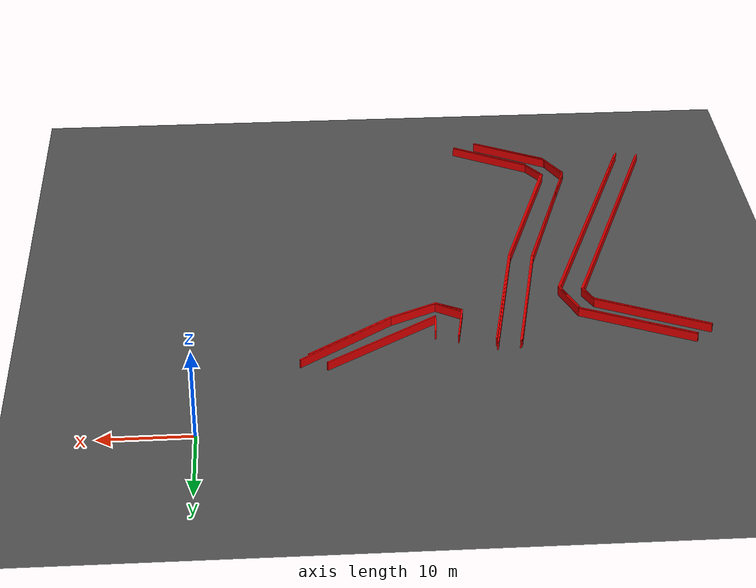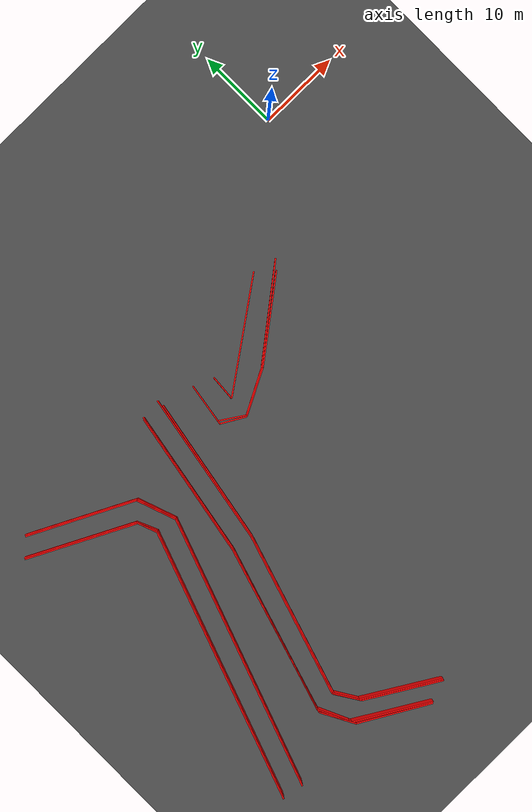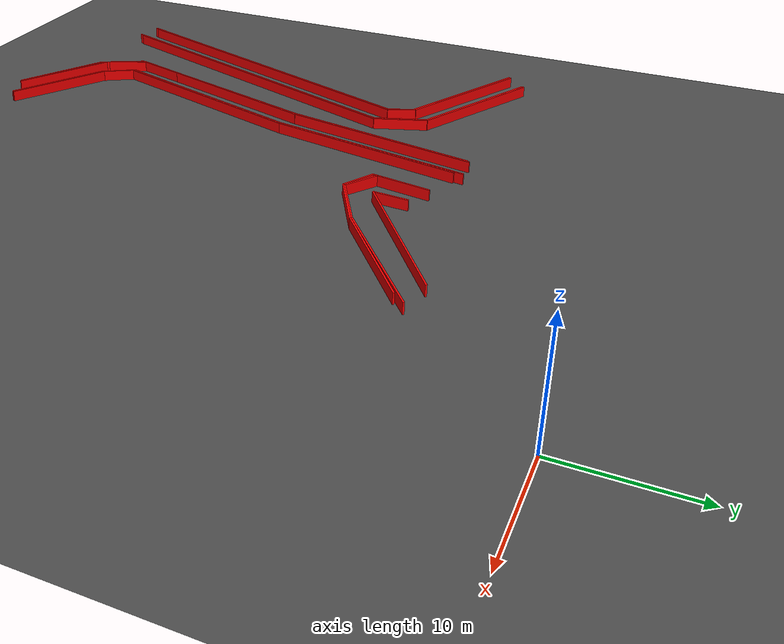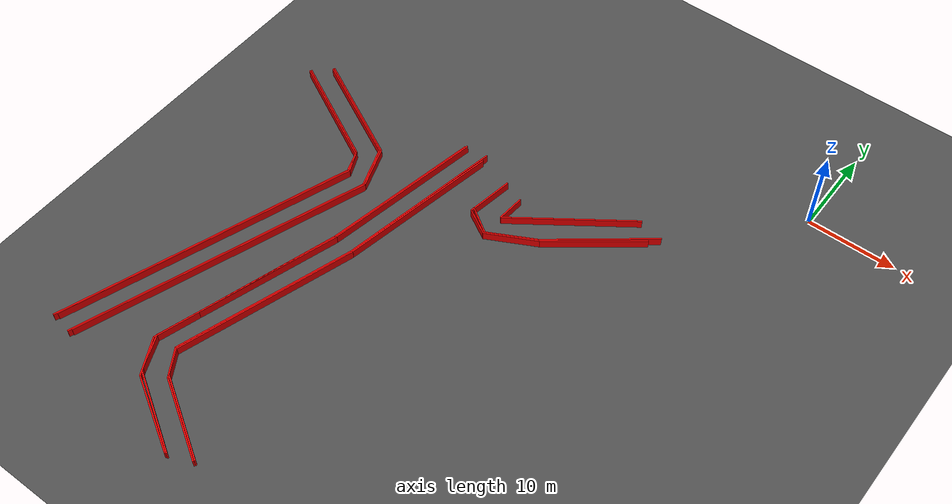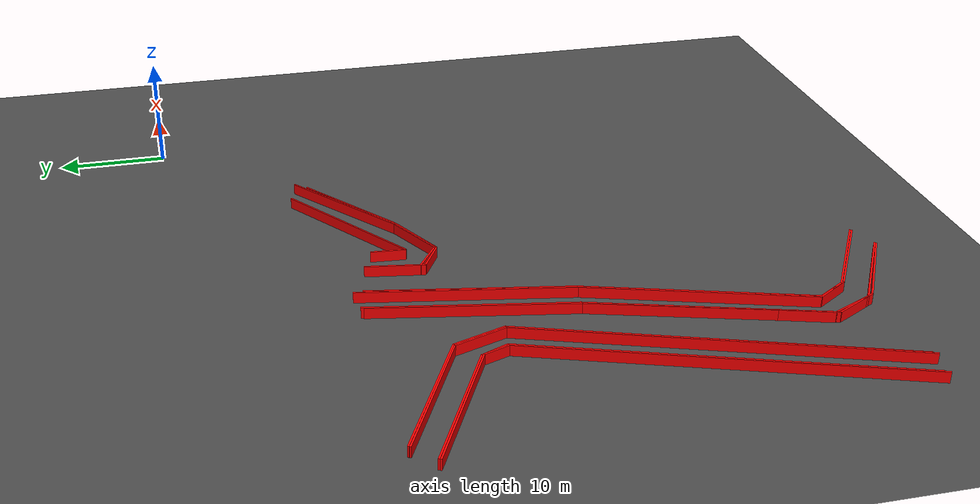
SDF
<sdf version="1.6">
 <world name="track_world">
  <model name="ground_plane">
   <static>true</static>
   <link name="link">
    <collision name="collision">
     <geometry><plane><normal>0 0 1</normal><size>1000 1000</size></plane></geometry>
    </collision>
    <visual name="visual">
     <geometry><plane><normal>0 0 1</normal><size>1000 1000</size></plane></geometry>
     <material><ambient>0.3 0.3 0.3 1</ambient><diffuse>0.3 0.3 0.3 1</diffuse></material>
    </visual>
   </link>
  </model>
  <model name="wall_8">
   <static>true</static>
   <pose>-49.50507416920916 -19.503081822004013 0.5 0 0 -0.4710732150903404</pose>
   <link name="link">
    <visual name="visual">
     <geometry><box><size>13.626830833983373 0.15 1.0</size></box></geometry>
     <material><ambient>1 0 0 1</ambient><diffuse>1 0 0 1</diffuse></material>
    </visual>
    <collision name="collision">
     <geometry><box><size>13.626830833983373 0.15 1.0</size></box></geometry>
    </collision>
   </link>
  </model>
  <model name="wall_9">
   <static>true</static>
   <pose>-43.01895416920916 -23.726601822004014 0.5 0 0 -1.2193515327913416</pose>
   <link name="link">
    <visual name="visual">
     <geometry><box><size>2.409902094359846 0.15 1.0</size></box></geometry>
     <material><ambient>1 0 0 1</ambient><diffuse>1 0 0 1</diffuse></material>
    </visual>
    <collision name="collision">
     <geometry><box><size>2.409902094359846 0.15 1.0</size></box></geometry>
    </collision>
   </link>
  </model>
  <model name="wall_10">
   <static>true</static>
   <pose>-48.18522416920916 -40.84694182200401 0.5 0 0 -1.906630457014399</pose>
   <link name="link">
    <visual name="visual">
     <geometry><box><size>33.87021429445052 0.15 1.0</size></box></geometry>
     <material><ambient>1 0 0 1</ambient><diffuse>1 0 0 1</diffuse></material>
    </visual>
    <collision name="collision">
     <geometry><box><size>33.87021429445052 0.15 1.0</size></box></geometry>
    </collision>
   </link>
  </model>
  <model name="wall_22">
   <static>true</static>
   <pose>-35.32611416920916 -57.363921822004016 0.5 0 0 2.5998727639351658</pose>
   <link name="link">
    <visual name="visual">
     <geometry><box><size>9.946579921018074 0.15 1.0</size></box></geometry>
     <material><ambient>1 0 0 1</ambient><diffuse>1 0 0 1</diffuse></material>
    </visual>
    <collision name="collision">
     <geometry><box><size>9.946579921018074 0.15 1.0</size></box></geometry>
    </collision>
   </link>
  </model>
  <model name="wall_23">
   <static>true</static>
   <pose>-40.37925416920916 -53.517501822004014 0.5 0 0 2.1240906521171885</pose>
   <link name="link">
    <visual name="visual">
     <geometry><box><size>3.0139704230134656 0.15 1.0</size></box></geometry>
     <material><ambient>1 0 0 1</ambient><diffuse>1 0 0 1</diffuse></material>
    </visual>
    <collision name="collision">
     <geometry><box><size>3.0139704230134656 0.15 1.0</size></box></geometry>
    </collision>
   </link>
  </model>
  <model name="wall_24">
   <static>true</static>
   <pose>-38.15436416920916 -42.50618182200401 0.5 0 0 1.2701199353947692</pose>
   <link name="link">
    <visual name="visual">
     <geometry><box><size>20.372336705680087 0.15 1.0</size></box></geometry>
     <material><ambient>1 0 0 1</ambient><diffuse>1 0 0 1</diffuse></material>
    </visual>
    <collision name="collision">
     <geometry><box><size>20.372336705680087 0.15 1.0</size></box></geometry>
    </collision>
   </link>
  </model>
  <model name="wall_25">
   <static>true</static>
   <pose>-33.516034169209156 -23.87744182200401 0.5 0 0 1.3905699709421426</pose>
   <link name="link">
    <visual name="visual">
     <geometry><box><size>18.09215606106691 0.15 1.0</size></box></geometry>
     <material><ambient>1 0 0 1</ambient><diffuse>1 0 0 1</diffuse></material>
    </visual>
    <collision name="collision">
     <geometry><box><size>18.09215606106691 0.15 1.0</size></box></geometry>
    </collision>
   </link>
  </model>
  <model name="wall_33">
   <static>true</static>
   <pose>-28.312054169209162 -18.44720182200401 0.5 0 0 -1.7266645281932202</pose>
   <link name="link">
    <visual name="visual">
     <geometry><box><size>5.344186907696995 0.15 1.0</size></box></geometry>
     <material><ambient>1 0 0 1</ambient><diffuse>1 0 0 1</diffuse></material>
    </visual>
    <collision name="collision">
     <geometry><box><size>5.344186907696995 0.15 1.0</size></box></geometry>
    </collision>
   </link>
  </model>
  <model name="wall_34">
   <static>true</static>
   <pose>-27.33159416920916 -21.87881182200401 0.5 0 0 -0.5162306706117475</pose>
   <link name="link">
    <visual name="visual">
     <geometry><box><size>3.208675627731798 0.15 1.0</size></box></geometry>
     <material><ambient>1 0 0 1</ambient><diffuse>1 0 0 1</diffuse></material>
    </visual>
    <collision name="collision">
     <geometry><box><size>3.208675627731798 0.15 1.0</size></box></geometry>
    </collision>
   </link>
  </model>
  <model name="wall_35">
   <static>true</static>
   <pose>-23.29662416920916 -21.313161822004012 0.5 0 0 0.47501075626509703</pose>
   <link name="link">
    <visual name="visual">
     <geometry><box><size>5.936660759585303 0.15 1.0</size></box></geometry>
     <material><ambient>1 0 0 1</ambient><diffuse>1 0 0 1</diffuse></material>
    </visual>
    <collision name="collision">
     <geometry><box><size>5.936660759585303 0.15 1.0</size></box></geometry>
    </collision>
   </link>
  </model>
  <model name="wall_36">
   <static>true</static>
   <pose>-16.16943416920916 -16.523991822004014 0.5 0 0 0.652846631100774</pose>
   <link name="link">
    <visual name="visual">
     <geometry><box><size>11.298409391095722 0.15 1.0</size></box></geometry>
     <material><ambient>1 0 0 1</ambient><diffuse>1 0 0 1</diffuse></material>
    </visual>
    <collision name="collision">
     <geometry><box><size>11.298409391095722 0.15 1.0</size></box></geometry>
    </collision>
   </link>
  </model>
  <model name="wall_43">
   <static>true</static>
   <pose>-15.792334169209163 -15.958341822004016 0.5 0 0 -2.4779520879828056</pose>
   <link name="link">
    <visual name="visual">
     <geometry><box><size>12.733478247595988 0.15 1.0</size></box></geometry>
     <material><ambient>1 0 0 1</ambient><diffuse>1 0 0 1</diffuse></material>
    </visual>
    <collision name="collision">
     <geometry><box><size>12.733478247595988 0.15 1.0</size></box></geometry>
    </collision>
   </link>
  </model>
  <model name="wall_44">
   <static>true</static>
   <pose>-23.334334169209164 -21.200031822004014 0.5 0 0 -2.6601954295324908</pose>
   <link name="link">
    <visual name="visual">
     <geometry><box><size>5.7010735786867315 0.15 1.0</size></box></geometry>
     <material><ambient>1 0 0 1</ambient><diffuse>1 0 0 1</diffuse></material>
    </visual>
    <collision name="collision">
     <geometry><box><size>5.7010735786867315 0.15 1.0</size></box></geometry>
    </collision>
   </link>
  </model>
  <model name="wall_45">
   <static>true</static>
   <pose>-27.293884169209164 -21.577131822004013 0.5 0 0 2.5596875354499096</pose>
   <link name="link">
    <visual name="visual">
     <geometry><box><size>3.4305738545613593 0.15 1.0</size></box></geometry>
     <material><ambient>1 0 0 1</ambient><diffuse>1 0 0 1</diffuse></material>
    </visual>
    <collision name="collision">
     <geometry><box><size>3.4305738545613593 0.15 1.0</size></box></geometry>
    </collision>
   </link>
  </model>
  <model name="wall_53">
   <static>true</static>
   <pose>-33.62916416920916 -23.500341822004017 0.5 0 0 -1.7463884887450765</pose>
   <link name="link">
    <visual name="visual">
     <geometry><box><size>18.996260442939818 0.15 1.0</size></box></geometry>
     <material><ambient>1 0 0 1</ambient><diffuse>1 0 0 1</diffuse></material>
    </visual>
    <collision name="collision">
     <geometry><box><size>18.996260442939818 0.15 1.0</size></box></geometry>
    </collision>
   </link>
  </model>
  <model name="wall_54">
   <static>true</static>
   <pose>-38.30520416920916 -42.50618182200402 0.5 0 0 -1.873681195169868</pose>
   <link name="link">
    <visual name="visual">
     <geometry><box><size>20.22831326409594 0.15 1.0</size></box></geometry>
     <material><ambient>1 0 0 1</ambient><diffuse>1 0 0 1</diffuse></material>
    </visual>
    <collision name="collision">
     <geometry><box><size>20.22831326409594 0.15 1.0</size></box></geometry>
    </collision>
   </link>
  </model>
  <model name="wall_55">
   <static>true</static>
   <pose>-40.37925416920916 -53.63063182200402 0.5 0 0 -1.0007558630951867</pose>
   <link name="link">
    <visual name="visual">
     <geometry><box><size>3.493826921070936 0.15 1.0</size></box></geometry>
     <material><ambient>1 0 0 1</ambient><diffuse>1 0 0 1</diffuse></material>
    </visual>
    <collision name="collision">
     <geometry><box><size>3.493826921070936 0.15 1.0</size></box></geometry>
    </collision>
   </link>
  </model>
  <model name="wall_56">
   <static>true</static>
   <pose>-35.28840416920916 -57.59018182200401 0.5 0 0 -0.540419500270584</pose>
   <link name="link">
    <visual name="visual">
     <geometry><box><size>9.674948622003114 0.15 1.0</size></box></geometry>
     <material><ambient>1 0 0 1</ambient><diffuse>1 0 0 1</diffuse></material>
    </visual>
    <collision name="collision">
     <geometry><box><size>9.674948622003114 0.15 1.0</size></box></geometry>
    </collision>
   </link>
  </model>
  <model name="wall_65">
   <static>true</static>
   <pose>-47.99667416920916 -40.620681822004016 0.5 0 0 1.2341215074081695</pose>
   <link name="link">
    <visual name="visual">
     <geometry><box><size>33.560544107442595 0.15 1.0</size></box></geometry>
     <material><ambient>1 0 0 1</ambient><diffuse>1 0 0 1</diffuse></material>
    </visual>
    <collision name="collision">
     <geometry><box><size>33.560544107442595 0.15 1.0</size></box></geometry>
    </collision>
   </link>
  </model>
  <model name="wall_66">
   <static>true</static>
   <pose>-42.98124416920916 -23.57576182200401 0.5 0 0 1.983206768392281</pose>
   <link name="link">
    <visual name="visual">
     <geometry><box><size>2.634307348811074 0.15 1.0</size></box></geometry>
     <material><ambient>1 0 0 1</ambient><diffuse>1 0 0 1</diffuse></material>
    </visual>
    <collision name="collision">
     <geometry><box><size>2.634307348811074 0.15 1.0</size></box></geometry>
    </collision>
   </link>
  </model>
  <model name="wall_67">
   <static>true</static>
   <pose>-49.50507416920916 -19.314531822004014 0.5 0 0 2.670426389276684</pose>
   <link name="link">
    <visual name="visual">
     <geometry><box><size>13.458191294850879 0.15 1.0</size></box></geometry>
     <material><ambient>1 0 0 1</ambient><diffuse>1 0 0 1</diffuse></material>
    </visual>
    <collision name="collision">
     <geometry><box><size>13.458191294850879 0.15 1.0</size></box></geometry>
    </collision>
   </link>
  </model>
  <model name="wall_82">
   <static>true</static>
   <pose>-47.69499416920915 -17.617581822004013 0.5 0 0 -0.46616016652765085</pose>
   <link name="link">
    <visual name="visual">
     <geometry><box><size>13.424124423156991 0.15 1.0</size></box></geometry>
     <material><ambient>1 0 0 1</ambient><diffuse>1 0 0 1</diffuse></material>
    </visual>
    <collision name="collision">
     <geometry><box><size>13.424124423156991 0.15 1.0</size></box></geometry>
    </collision>
   </link>
  </model>
  <model name="wall_83">
   <static>true</static>
   <pose>-40.86948416920916 -22.972401822004016 0.5 0 0 -1.2298173732985478</pose>
   <link name="link">
    <visual name="visual">
     <geometry><box><size>4.961696026481267 0.15 1.0</size></box></geometry>
     <material><ambient>1 0 0 1</ambient><diffuse>1 0 0 1</diffuse></material>
    </visual>
    <collision name="collision">
     <geometry><box><size>4.961696026481267 0.15 1.0</size></box></geometry>
    </collision>
   </link>
  </model>
  <model name="wall_84">
   <static>true</static>
   <pose>-45.62094416920916 -41.29946182200402 0.5 0 0 -1.906630457014399</pose>
   <link name="link">
    <visual name="visual">
     <geometry><box><size>33.87021429445051 0.15 1.0</size></box></geometry>
     <material><ambient>1 0 0 1</ambient><diffuse>1 0 0 1</diffuse></material>
    </visual>
    <collision name="collision">
     <geometry><box><size>33.87021429445051 0.15 1.0</size></box></geometry>
    </collision>
   </link>
  </model>
  <model name="wall_94">
   <static>true</static>
   <pose>-37.89039416920916 -58.49522182200401 0.5 0 0 2.605157195985062</pose>
   <link name="link">
    <visual name="visual">
     <geometry><box><size>9.739698035503976 0.15 1.0</size></box></geometry>
     <material><ambient>1 0 0 1</ambient><diffuse>1 0 0 1</diffuse></material>
    </visual>
    <collision name="collision">
     <geometry><box><size>9.739698035503976 0.15 1.0</size></box></geometry>
    </collision>
   </link>
  </model>
  <model name="wall_95">
   <static>true</static>
   <pose>-42.94353416920916 -54.12086182200402 0.5 0 0 2.00193506751368</pose>
   <link name="link">
    <visual name="visual">
     <geometry><box><size>4.150841639426879 0.15 1.0</size></box></geometry>
     <material><ambient>1 0 0 1</ambient><diffuse>1 0 0 1</diffuse></material>
    </visual>
    <collision name="collision">
     <geometry><box><size>4.150841639426879 0.15 1.0</size></box></geometry>
    </collision>
   </link>
  </model>
  <model name="wall_96">
   <static>true</static>
   <pose>-40.75635416920916 -42.27992182200401 0.5 0 0 1.2730961170835957</pose>
   <link name="link">
    <visual name="visual">
     <geometry><box><size>20.82698412480309 0.15 1.0</size></box></geometry>
     <material><ambient>1 0 0 1</ambient><diffuse>1 0 0 1</diffuse></material>
    </visual>
    <collision name="collision">
     <geometry><box><size>20.82698412480309 0.15 1.0</size></box></geometry>
    </collision>
   </link>
  </model>
  <model name="wall_97">
   <static>true</static>
   <pose>-36.08031416920916 -23.349501822004015 0.5 0 0 1.3920522940028188</pose>
   <link name="link">
    <visual name="visual">
     <geometry><box><size>18.24057296702053 0.15 1.0</size></box></geometry>
     <material><ambient>1 0 0 1</ambient><diffuse>1 0 0 1</diffuse></material>
    </visual>
    <collision name="collision">
     <geometry><box><size>18.24057296702053 0.15 1.0</size></box></geometry>
    </collision>
   </link>
  </model>
  <model name="wall_107">
   <static>true</static>
   <pose>-25.596934169209163 -18.37178182200401 0.5 0 0 -1.6421037915801857</pose>
   <link name="link">
    <visual name="visual">
     <geometry><box><size>3.175710433462099 0.15 1.0</size></box></geometry>
     <material><ambient>1 0 0 1</ambient><diffuse>1 0 0 1</diffuse></material>
    </visual>
    <collision name="collision">
     <geometry><box><size>3.175710433462099 0.15 1.0</size></box></geometry>
    </collision>
   </link>
  </model>
  <model name="wall_108">
   <static>true</static>
   <pose>-19.67646416920916 -15.656661822004011 0.5 0 0 0.6190660545826284</pose>
   <link name="link">
    <visual name="visual">
     <geometry><box><size>14.816911160373476 0.15 1.0</size></box></geometry>
     <material><ambient>1 0 0 1</ambient><diffuse>1 0 0 1</diffuse></material>
    </visual>
    <collision name="collision">
     <geometry><box><size>14.816911160373476 0.15 1.0</size></box></geometry>
    </collision>
   </link>
  </model>
  <model name="wall_126">
   <static>true</static>
   <pose>-36.23115416920916 -23.50034182200401 0.5 0 0 -1.751022682647651</pose>
   <link name="link">
    <visual name="visual">
     <geometry><box><size>18.09215606106691 0.15 1.0</size></box></geometry>
     <material><ambient>1 0 0 1</ambient><diffuse>1 0 0 1</diffuse></material>
    </visual>
    <collision name="collision">
     <geometry><box><size>18.09215606106691 0.15 1.0</size></box></geometry>
    </collision>
   </link>
  </model>
  <model name="wall_127">
   <static>true</static>
   <pose>-40.86948416920916 -42.50618182200401 0.5 0 0 -1.8608832591159246</pose>
   <link name="link">
    <visual name="visual">
     <geometry><box><size>21.093883253531107 0.15 1.0</size></box></geometry>
     <material><ambient>1 0 0 1</ambient><diffuse>1 0 0 1</diffuse></material>
    </visual>
    <collision name="collision">
     <geometry><box><size>21.093883253531107 0.15 1.0</size></box></geometry>
    </collision>
   </link>
  </model>
  <model name="wall_128">
   <static>true</static>
   <pose>-42.83040416920916 -54.57338182200401 0.5 0 0 -1.0768549578753142</pose>
   <link name="link">
    <visual name="visual">
     <geometry><box><size>4.454251820811211 0.15 1.0</size></box></geometry>
     <material><ambient>1 0 0 1</ambient><diffuse>1 0 0 1</diffuse></material>
    </visual>
    <collision name="collision">
     <geometry><box><size>4.454251820811211 0.15 1.0</size></box></geometry>
    </collision>
   </link>
  </model>
  <model name="wall_129">
   <static>true</static>
   <pose>-37.81497416920916 -58.79690182200402 0.5 0 0 -0.5191461142465235</pose>
   <link name="link">
    <visual name="visual">
     <geometry><box><size>9.120832190650152 0.15 1.0</size></box></geometry>
     <material><ambient>1 0 0 1</ambient><diffuse>1 0 0 1</diffuse></material>
    </visual>
    <collision name="collision">
     <geometry><box><size>9.120832190650152 0.15 1.0</size></box></geometry>
    </collision>
   </link>
  </model>
  <model name="wall_139">
   <static>true</static>
   <pose>-45.43239416920916 -41.07320182200401 0.5 0 0 1.2341215074081695</pose>
   <link name="link">
    <visual name="visual">
     <geometry><box><size>33.5605441074426 0.15 1.0</size></box></geometry>
     <material><ambient>1 0 0 1</ambient><diffuse>1 0 0 1</diffuse></material>
    </visual>
    <collision name="collision"><geometry><box><size>33.5605441074426 0.15 1.0</size></box></geometry></collision>
   </link>
  </model>
  <model name="wall_140">
   <static>true</static>
   <pose>-40.718644169209156 -22.896981822004008 0.5 0 0 1.9117752802912467</pose>
   <link name="link">
    <visual name="visual">
     <geometry><box><size>4.9616960264812695 0.15 1.0</size></box></geometry>
     <material><ambient>1 0 0 1</ambient><diffuse>1 0 0 1</diffuse></material>
    </visual>
    <collision name="collision">
     <geometry><box><size>4.9616960264812695 0.15 1.0</size></box></geometry>
    </collision>
   </link>
  </model>
  <model name="wall_141">
   <static>true</static>
   <pose>-47.58186416920916 -17.504451822004008 0.5 0 0 2.672957554772023</pose>
   <link name="link">
    <visual name="visual">
     <geometry><box><size>13.525436821056836 0.15 1.0</size></box></geometry>
     <material><ambient>1 0 0 1</ambient><diffuse>1 0 0 1</diffuse></material>
    </visual>
    <collision name="collision">
     <geometry><box><size>13.525436821056836 0.15 1.0</size></box></geometry>
    </collision>
   </link>
  </model>
 </world>
</sdf>
